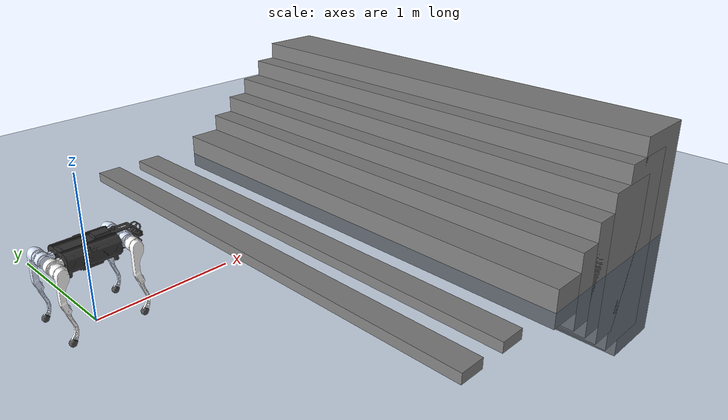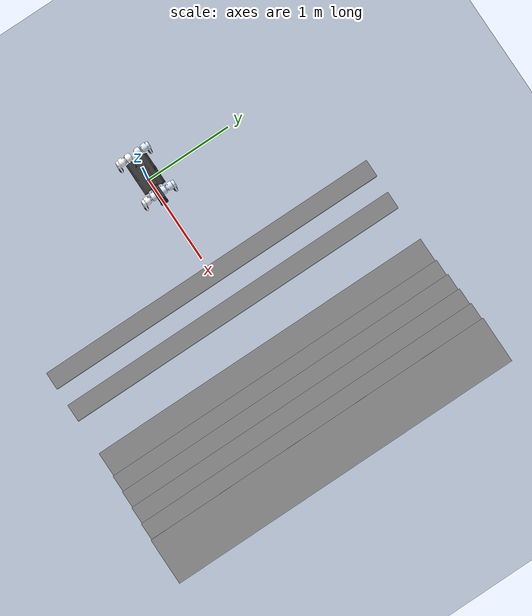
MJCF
<mujoco model="boying scene">
  <include file="boying_withouthm.xml"/>

  <statistic center="0 0 0.1" extent="0.8"/>

  <visual>
    <headlight diffuse="0.6 0.6 0.6" ambient="0.3 0.3 0.3" specular="0 0 0"/>
    <rgba haze="0.15 0.25 0.35 1"/>
    <global azimuth="-130" elevation="-20"/>
  </visual>

  <asset>
    <texture type="skybox" builtin="gradient" rgb1="0.3 0.5 0.7" rgb2="0 0 0" width="512" height="3072"/>
    <texture type="2d" name="groundplane" builtin="checker" mark="edge" rgb1="0.2 0.3 0.4" rgb2="0.1 0.2 0.3"
      markrgb="0.8 0.8 0.8" width="300" height="300"/>
    <material name="groundplane" texture="groundplane" texuniform="true" texrepeat="5 5" reflectance="0.2"/>
  </asset>

  <worldbody>
    <light pos="0 0 1.5" dir="0 0 -1" directional="true"/>
    <geom name="floor" size="0 0 0.05" type="plane" material="groundplane"/>

    <geom pos="1.2 0 0.04" type="box"  size="0.1 2 0.04" quat="1.0 0 0 0"/>
    <geom pos="1.6 0 0.04" type="box"  size="0.1 2 0.04" quat="1.0 0 0 0"/>

    <geom pos="2.3 0 0.02" type="box"  size="0.2 2 0.15" quat="1.0 0 0 0"/>
    <geom pos="2.6 0 0.02" type="box"  size="0.22 2 0.3" quat="1.0 0 0 0"/>
    <geom pos="2.8 0 0.02" type="box"  size="0.23 2 0.45" quat="1.0 0 0 0"/>
    <geom pos="3 0 0.02" type="box"  size="0.24 2 0.6" quat="1.0 0 0 0"/>
    <geom pos="3.2 0 0.02" type="box"  size="0.25 2 0.75" quat="1.0 0 0 0"/>
    <geom pos="3.4 0 0.02" type="box"  size="0.26 2 0.9" quat="1.0 0 0 0"/>
  </worldbody>
</mujoco>

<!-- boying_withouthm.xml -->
<mujoco model="boying">
  <compiler angle="radian" meshdir="../meshes/" autolimits="true" />

<default>
    <default class="boying">
      <geom friction="0.4" margin="0.001" condim="1"/>
      <joint axis="0 1 0" damping="0.1" armature="0.01" frictionloss="0.2"/>
      <motor ctrlrange="-60 60"/>
      <default class="abduction">
        <joint axis="1 0 0" range="-0.69813 0.69813"/>
      </default>
      <default class="hip">
        <joint range="-0.175 4.712"/>
      </default>
      <default class="knee">
        <joint range="-2.7478 -0.9269"/>
        <motor ctrlrange="-60 60"/>
      </default>
      <default class="visual">
        <geom type="mesh" contype="0" conaffinity="0" group="2"/>
      </default>
      <default class="collision">
        <geom group="3"/>
        <default class="foot">
          <geom size="0.022" pos="-0.002 0 -0.213" priority="1" condim="6"
            friction="0.6 0.02 0.01"/>
        </default>
      </default>
    </default>
  </default>

  <asset>
    <mesh name="base" content_type="model/stl" file="base.STL"/>
    <mesh name="head" content_type="model/stl" file="head.STL"/>
    <mesh name="FL_hip" content_type="model/stl" file="FL_hip.STL"/>
    <mesh name="L_thigh" content_type="model/stl" file="L_thigh.STL"/>
    <mesh name="L_calf" content_type="model/stl" file="L_calf.STL"/>
    <mesh name="L_foot" content_type="model/stl" file="L_foot.STL"/>
    <mesh name="FR_hip" content_type="model/stl" file="FR_hip.STL"/>
    <mesh name="R_thigh" content_type="model/stl" file="R_thigh.STL"/>
    <mesh name="R_calf" content_type="model/stl" file="R_calf.STL"/>
    <mesh name="R_foot" content_type="model/stl" file="R_foot.STL"/>
    <mesh name="RL_hip" content_type="model/stl" file="RL_hip.STL"/>
    <mesh name="RR_hip" content_type="model/stl" file="RR_hip.STL"/>
  </asset>

  <worldbody>
    <body name="base" pos="0 0 0.50" childclass="boying">
      <inertial pos="0.0334842 0.00147378 -0.0107392" quat="-0.00245763 0.699039 -0.00181381 0.715077" mass="8.98346" diaginertia="0.176459 0.170398 0.0471226"/>
      <joint name="floating_to_word" type="free"/>
      <geom type="mesh" contype="0" conaffinity="0" group="1" density="0" rgba="0.203922 0.203922 0.203922 1" mesh="base"/>
      <geom class="collision" size="0.175 0.123 0.068" pos="0 0 0.005" type="box" rgba="0.203922 0.203922 0.203922 1"/>
      <geom class="collision" size="0.075 0.075 0.0125" pos="0 0 -0.0755" type="box" rgba="0.203922 0.203922 0.203922 1"/>
      <geom type="mesh" contype="0" conaffinity="0" group="1" density="0" rgba="0.203922 0.203922 0.203922 1" mesh="head"/>
      <geom class="collision" size="0.071 0.039 0.065" pos="0.24 0 0" type="box" rgba="0.203922 0.203922 0.203922 1"/>
      <geom class="collision" size="0.07" pos="0.315 0 0" rgba="0.203922 0.203922 0.203922 1"/>
      <site name="imu" pos="0 0 0" group="5" />
      <body name="FL_hip" pos="0.23795 0.055027 0">
        <inertial pos="-0.0071 0.000505 0" quat="0.503772 0.503772 0.496199 0.496199" mass="0.832922" diaginertia="0.00100309 0.000871 0.000606909"/>
        <joint name="FL_hip_joint" pos="0 0 0" axis="1 0 0" range="-0.681 0.681" actuatorfrcrange="-60 60"/>
        <geom type="mesh" contype="0" conaffinity="0" group="1" density="0" rgba="0.86667 0.9098 1 1" mesh="FL_hip"/>
        <geom class="collision" size="0.044 0.031" quat="0.707107 0.707107 0 0" type="cylinder" rgba="0.86667 0.9098 1 1"/>
        <body name="FL_thigh">
          <inertial pos="-0.003487 0.099349 -0.042506" quat="0.992842 0.112211 0.027623 0.0301661" mass="1.50976" diaginertia="0.0100085 0.00958144 0.0015191"/>
          <joint name="FL_thigh_joint" pos="0 0 0" axis="0 1 0" range="-0.175 4.712" actuatorfrcrange="-60 60"/>
          <geom type="mesh" contype="0" conaffinity="0" group="1" density="0" rgba="0.86667 0.9098 1 1" mesh="L_thigh"/>
          <geom class="collision" size="0.044 0.0545" pos="0 0.0875 0" quat="0.707107 0.707107 0 0" type="cylinder" rgba="0.86667 0.9098 1 1"/>
          <geom class="collision" size="0.022 0.085" pos="-0.02 0.127 -0.1063" type="cylinder" rgba="0.86667 0.9098 1 1"/>
          <geom class="collision" size="0.025 0.0275" pos="-0.006 0.127 -0.219" quat="0.973894 0 -0.227004 0" type="cylinder" rgba="0.86667 0.9098 1 1"/>
          <body name="FL_calf" pos="0 0.1267 -0.235" quat="0.894493 0 0.447082 0">
            <inertial pos="0.071926 0 -0.037864" quat="0.180810 0.180810 -0.683599 0.683599" mass="0.137980" diaginertia="0.000022 0.000808 0.000824"/>
            <joint name="FL_calf_joint" pos="0 0 0" axis="0 1 0" range="-2.7478 -0.9269" actuatorfrcrange="-60 60"/>
            <geom type="mesh" contype="0" conaffinity="0" group="1" density="0" rgba="0.86667 0.9098 1 1" mesh="L_calf"/>
            <geom class="collision" size="0.015 0.05" pos="0.0514 0 -0.0265" quat="0.808028 0 -0.589145 0" type="cylinder" rgba="0.86667 0.9098 1 1"/>
            <geom class="collision" size="0.014 0.037" pos="0.127 0 -0.056" quat="0.878778 0 -0.47723 0" type="cylinder" rgba="0.86667 0.9098 1 1"/>
            <geom class="collision" size="0.018 0.0285" pos="0.17 0 -0.102" quat="0.961193 0 -0.275875 0" type="cylinder" rgba="0.86667 0.9098 1 1"/>
            <geom type="mesh" contype="0" conaffinity="0" group="1" density="0" rgba="0.29804 0.29804 0.29804 1" mesh="L_foot"/>
            <geom class="collision" size="0.025" pos="0.18 0 -0.136" rgba="0.29804 0.29804 0.29804 1" priority="1" condim="6"
            friction="0.6 0.02 0.01"/>
          </body>
        </body>
      </body>
      <body name="FR_hip" pos="0.23795 -0.054973 0">
        <inertial pos="-0.0071 -0.000505 0" quat="0.496199 0.496199 0.503772 0.503772" mass="0.832922" diaginertia="0.00100309 0.000871 0.000606909"/>
        <joint name="FR_hip_joint" pos="0 0 0" axis="1 0 0" range="-0.681 0.681" actuatorfrcrange="-60 60"/>
        <geom type="mesh" contype="0" conaffinity="0" group="1" density="0" rgba="0.86667 0.9098 1 1" mesh="FR_hip"/>
        <geom class="collision" size="0.044 0.031" quat="0.707107 0.707107 0 0" type="cylinder" rgba="0.86667 0.9098 1 1"/>
        <body name="FR_thigh">
          <inertial pos="-0.003876 -0.099428 -0.043098" quat="0.992467 -0.111413 0.029126 -0.041808" mass="1.518179" diaginertia="0.010166 0.009743 0.001533"/>
          <joint name="FR_thigh_joint" pos="0 0 0" axis="0 1 0" range="-0.175 4.712" actuatorfrcrange="-60 60"/>
          <geom type="mesh" contype="0" conaffinity="0" group="1" density="0" rgba="1 1 1 1" mesh="R_thigh"/>
          <geom class="collision" size="0.044 0.0545" pos="0 -0.0875 0" quat="0.707107 0.707107 0 0" type="cylinder" rgba="1 1 1 1"/>
          <geom class="collision" size="0.022 0.085" pos="-0.02 -0.127 -0.1063" type="cylinder" rgba="1 1 1 1"/>
          <geom class="collision" size="0.025 0.0275" pos="-0.006 -0.127 -0.219" quat="0.973894 0 -0.227004 0" type="cylinder" rgba="1 1 1 1"/>
          <body name="FR_calf" pos="0 -0.1267 -0.235" quat="0.894493 0 0.447082 0">
            <inertial pos="0.071926 0 -0.037864" quat="0.180810 0.180810 -0.683599 0.683599" mass="0.137980" diaginertia="0.000022 0.000808 0.000824"/>
            <joint name="FR_calf_joint" pos="0 0 0" axis="0 1 0" range="-2.7478 -0.9269" actuatorfrcrange="-60 60"/>
            <geom type="mesh" contype="0" conaffinity="0" group="1" density="0" rgba="1 1 1 1" mesh="R_calf"/>
            <geom class="collision" size="0.015 0.05" pos="0.0514 0 -0.0265" quat="0.808028 0 -0.589145 0" type="cylinder" rgba="1 1 1 1"/>
            <geom class="collision" size="0.014 0.037" pos="0.127 0 -0.056" quat="0.878778 0 -0.47723 0" type="cylinder" rgba="1 1 1 1"/>
            <geom class="collision" size="0.018 0.0285" pos="0.17 0 -0.102" quat="0.961193 0 -0.275875 0" type="cylinder" rgba="1 1 1 1"/>
            <geom type="mesh" contype="0" conaffinity="0" group="1" density="0" rgba="0.29804 0.29804 0.29804 1" mesh="R_foot"/>
            <geom class="collision" size="0.025" pos="0.18 0 -0.136" rgba="0.29804 0.29804 0.29804 1" priority="1" condim="6"
            friction="0.6 0.02 0.01"/>
          </body>
        </body>
      </body>
      <body name="RL_hip" pos="-0.23805 0.055027 0">
        <inertial pos="0.0071 0.000505 0" quat="0.496199 0.496199 0.503772 0.503772" mass="0.832922" diaginertia="0.00100309 0.000871 0.000606909"/>
        <joint name="RL_hip_joint" pos="0 0 0" axis="1 0 0" range="-0.681 0.681" actuatorfrcrange="-60 60"/>
        <geom type="mesh" contype="0" conaffinity="0" group="1" density="0" rgba="0.866667 0.909804 1 1" mesh="RL_hip"/>
        <geom class="collision" size="0.044 0.031" quat="0.707107 0.707107 0 0" type="cylinder" rgba="0.866667 0.909804 1 1"/>
        <body name="RL_thigh">
          <inertial pos="-0.003849 0.099349 -0.04284" quat="0.992376 0.112118 0.0290042 0.0421632" mass="1.50976" diaginertia="0.010087 0.00966369 0.00152633"/>
          <joint name="RL_thigh_joint" pos="0 0 0" axis="0 1 0" range="-0.175 4.712" actuatorfrcrange="-60 60"/>
          <geom type="mesh" contype="0" conaffinity="0" group="1" density="0" rgba="0.86667 0.9098 1 1" mesh="L_thigh"/>
          <geom class="collision" size="0.044 0.0545" pos="0 0.0875 0" quat="0.707107 0.707107 0 0" type="cylinder" rgba="0.86667 0.9098 1 1"/>
          <geom class="collision" size="0.022 0.085" pos="-0.02 0.127 -0.1063" type="cylinder" rgba="0.86667 0.9098 1 1"/>
          <geom class="collision" size="0.025 0.0275" pos="-0.006 0.127 -0.219" quat="0.973894 0 -0.227004 0" type="cylinder" rgba="0.86667 0.9098 1 1"/>
          <body name="RL_calf" pos="0 0.1267 -0.235" quat="0.894493 0 0.447082 0">
            <inertial pos="0.071926 0 -0.037864" quat="0.180810 0.180810 -0.683599 0.683599" mass="0.137980" diaginertia="0.000022 0.000808 0.000824"/>
            <joint name="RL_calf_joint" pos="0 0 0" axis="0 1 0" range="-2.7478 -0.9269" actuatorfrcrange="-60 60"/>
            <geom type="mesh" contype="0" conaffinity="0" group="1" density="0" rgba="0.86667 0.9098 1 1" mesh="L_calf"/>
            <geom class="collision" size="0.015 0.05" pos="0.0514 0 -0.0265" quat="0.808028 0 -0.589145 0" type="cylinder" rgba="0.86667 0.9098 1 1"/>
            <geom class="collision" size="0.014 0.037" pos="0.127 0 -0.056" quat="0.878778 0 -0.47723 0" type="cylinder" rgba="0.86667 0.9098 1 1"/>
            <geom class="collision" size="0.018 0.0285" pos="0.17 0 -0.102" quat="0.961193 0 -0.275875 0" type="cylinder" rgba="0.86667 0.9098 1 1"/>
            <geom type="mesh" contype="0" conaffinity="0" group="1" density="0" rgba="0.29804 0.29804 0.29804 1" mesh="L_foot"/>
            <geom class="collision" size="0.025" pos="0.18 0 -0.136" rgba="0.29804 0.29804 0.29804 1" priority="1" condim="6"
            friction="0.6 0.02 0.01"/>
          </body>
        </body>
      </body>
      <body name="RR_hip" pos="-0.23805 -0.054973 0">
        <inertial pos="0.0071 -0.000505 0" quat="0.503772 0.503772 0.496199 0.496199" mass="0.832922" diaginertia="0.00100309 0.000871 0.000606909"/>
        <joint name="RR_hip_joint" pos="0 0 0" axis="1 0 0" range="-0.681 0.681" actuatorfrcrange="-60 60"/>
        <geom type="mesh" contype="0" conaffinity="0" group="1" density="0" rgba="1 1 1 1" mesh="RR_hip"/>
        <geom class="collision" size="0.044 0.031" quat="0.707107 0.707107 0 0" type="cylinder" rgba="1 1 1 1"/>
        <body name="RR_thigh">
          <inertial pos="-0.003876 -0.099428 -0.043098" quat="0.992467 -0.111413 0.029126 -0.041808" mass="1.518179" diaginertia="0.010166 0.009743 0.001533"/>
          <joint name="RR_thigh_joint" pos="0 0 0" axis="0 1 0" range="-0.175 4.712" actuatorfrcrange="-60 60"/>
          <geom type="mesh" contype="0" conaffinity="0" group="1" density="0" rgba="1 1 1 1" mesh="R_thigh"/>
          <geom class="collision" size="0.044 0.0545" pos="0 -0.0875 0" quat="0.707107 0.707107 0 0" type="cylinder" rgba="1 1 1 1"/>
          <geom class="collision" size="0.022 0.085" pos="-0.02 -0.127 -0.1063" type="cylinder" rgba="1 1 1 1"/>
          <geom class="collision" size="0.025 0.0275" pos="-0.006 -0.127 -0.219" quat="0.973894 0 -0.227004 0" type="cylinder" rgba="1 1 1 1"/>
          <body name="RR_calf" pos="0 -0.1267 -0.235" quat="0.894493 0 0.447082 0">
            <inertial pos="0.071926 0 -0.037864" quat="0.180810 0.180810 -0.683599 0.683599" mass="0.137980" diaginertia="0.000022 0.000808 0.000824"/>
            <joint name="RR_calf_joint" pos="0 0 0" axis="0 1 0" range="-2.7478 -0.9269" actuatorfrcrange="-60 60"/>
            <geom type="mesh" contype="0" conaffinity="0" group="1" density="0" rgba="1 1 1 1" mesh="R_calf"/>
            <geom class="collision" size="0.015 0.05" pos="0.0514 0 -0.0265" quat="0.808028 0 -0.589145 0" type="cylinder" rgba="1 1 1 1"/>
            <geom class="collision" size="0.014 0.037" pos="0.127 0 -0.056" quat="0.878778 0 -0.47723 0" type="cylinder" rgba="1 1 1 1"/>
            <geom class="collision" size="0.018 0.0285" pos="0.17 0 -0.102" quat="0.961193 0 -0.275875 0" type="cylinder" rgba="1 1 1 1"/>
            <geom type="mesh" contype="0" conaffinity="0" group="1" density="0" rgba="0.29804 0.29804 0.29804 1" mesh="R_foot"/>
            <geom class="collision" size="0.025" pos="0.18 0 -0.136" rgba="0.29804 0.29804 0.29804 1" priority="1" condim="6"
            friction="0.6 0.02 0.01"/>
          </body>
        </body>
      </body>
    </body>
  </worldbody>

  <actuator>
    <motor class="abduction" name="FR_hip" joint="FR_hip_joint" />
    <motor class="hip" name="FR_thigh" joint="FR_thigh_joint" />
    <motor class="knee" name="FR_calf" joint="FR_calf_joint" />
    <motor class="abduction" name="FL_hip" joint="FL_hip_joint" />
    <motor class="hip" name="FL_thigh" joint="FL_thigh_joint" />
    <motor class="knee" name="FL_calf" joint="FL_calf_joint" />
    <motor class="abduction" name="RR_hip" joint="RR_hip_joint" />
    <motor class="hip" name="RR_thigh" joint="RR_thigh_joint" />
    <motor class="knee" name="RR_calf" joint="RR_calf_joint" />
    <motor class="abduction" name="RL_hip" joint="RL_hip_joint" />
    <motor class="hip" name="RL_thigh" joint="RL_thigh_joint" />
    <motor class="knee" name="RL_calf" joint="RL_calf_joint" />
  </actuator>

  <sensor>
    <jointpos name="FR_hip_pos" joint="FR_hip_joint" />
    <jointpos name="FR_thigh_pos" joint="FR_thigh_joint" />
    <jointpos name="FR_calf_pos" joint="FR_calf_joint" />
    <jointpos name="FL_hip_pos" joint="FL_hip_joint" />
    <jointpos name="FL_thigh_pos" joint="FL_thigh_joint" />
    <jointpos name="FL_calf_pos" joint="FL_calf_joint" />
    <jointpos name="RR_hip_pos" joint="RR_hip_joint" />
    <jointpos name="RR_thigh_pos" joint="RR_thigh_joint" />
    <jointpos name="RR_calf_pos" joint="RR_calf_joint" />
    <jointpos name="RL_hip_pos" joint="RL_hip_joint" />
    <jointpos name="RL_thigh_pos" joint="RL_thigh_joint" />
    <jointpos name="RL_calf_pos" joint="RL_calf_joint" />

    <jointvel name="FR_hip_vel" joint="FR_hip_joint" />
    <jointvel name="FR_thigh_vel" joint="FR_thigh_joint" />
    <jointvel name="FR_calf_vel" joint="FR_calf_joint" />
    <jointvel name="FL_hip_vel" joint="FL_hip_joint" />
    <jointvel name="FL_thigh_vel" joint="FL_thigh_joint" />
    <jointvel name="FL_calf_vel" joint="FL_calf_joint" />
    <jointvel name="RR_hip_vel" joint="RR_hip_joint" />
    <jointvel name="RR_thigh_vel" joint="RR_thigh_joint" />
    <jointvel name="RR_calf_vel" joint="RR_calf_joint" />
    <jointvel name="RL_hip_vel" joint="RL_hip_joint" />
    <jointvel name="RL_thigh_vel" joint="RL_thigh_joint" />
    <jointvel name="RL_calf_vel" joint="RL_calf_joint" />

    <jointactuatorfrc name="FR_hip_torque" joint="FR_hip_joint" noise="0.01" />
    <jointactuatorfrc name="FR_thigh_torque" joint="FR_thigh_joint" noise="0.01" />
    <jointactuatorfrc name="FR_calf_torque" joint="FR_calf_joint" noise="0.01" />
    <jointactuatorfrc name="FL_hip_torque" joint="FL_hip_joint" noise="0.01" />
    <jointactuatorfrc name="FL_thigh_torque" joint="FL_thigh_joint" noise="0.01" />
    <jointactuatorfrc name="FL_calf_torque" joint="FL_calf_joint" noise="0.01" />
    <jointactuatorfrc name="RR_hip_torque" joint="RR_hip_joint" noise="0.01" />
    <jointactuatorfrc name="RR_thigh_torque" joint="RR_thigh_joint" noise="0.01" />
    <jointactuatorfrc name="RR_calf_torque" joint="RR_calf_joint" noise="0.01" />
    <jointactuatorfrc name="RL_hip_torque" joint="RL_hip_joint" noise="0.01" />
    <jointactuatorfrc name="RL_thigh_torque" joint="RL_thigh_joint" noise="0.01" />
    <jointactuatorfrc name="RL_calf_torque" joint="RL_calf_joint" noise="0.01" />

    <framequat name="imu_quat" objtype="site" objname="imu" />
    <gyro name="imu_gyro" site="imu" />
    <accelerometer name="imu_acc" site="imu" />

    <framepos name="frame_pos" objtype="site" objname="imu" />
    <framelinvel name="frame_vel" objtype="site" objname="imu" />
  </sensor>

  <keyframe>
    <key name="home" qpos="0 0 0.27 1 0 0 0 0 0.8 -1.5 0 0.8 -1.5 0 0.8 -1.5 0 0.8 -1.5"
      ctrl="0 0.8 -1.5 0 0.8 -1.5 0 0.8 -1.5 0 0.8 -1.5" />
  </keyframe>
</mujoco>
